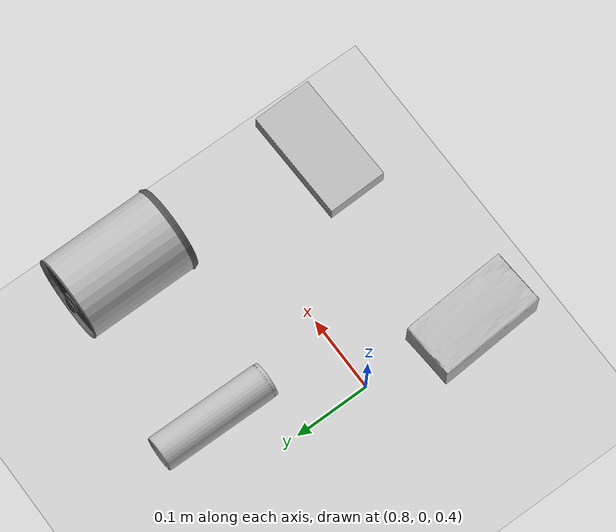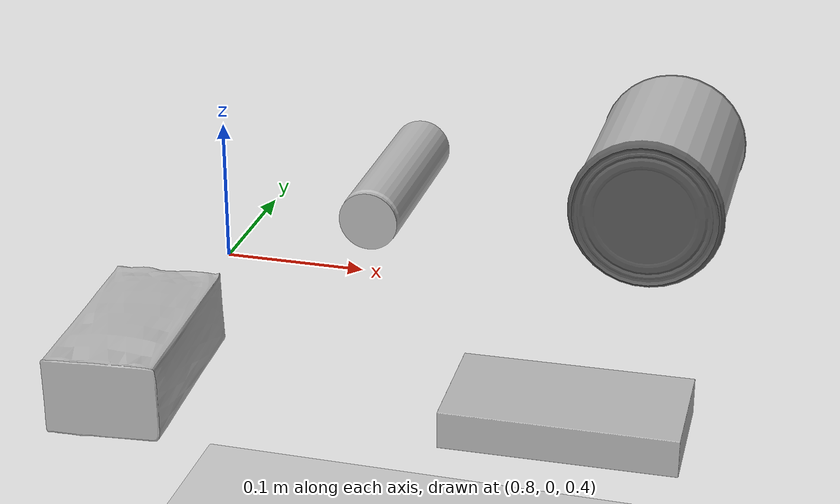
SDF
<sdf version="1.7">
 <world name="default">
  <light name="sun" type="directional">
   <pose>0 0 10 0 -0 0</pose>
   <diffuse>0.8 0.8 0.8 1</diffuse>
   <specular>0.2 0.2 0.2 1</specular>
   <attenuation>
    <range>1000</range>
    <constant>0.9</constant>
    <linear>0.01</linear>
    <quadratic>0.001</quadratic>
   </attenuation>
   <direction>-0.5 0.1 -0.9</direction>
   <spot><inner_angle>0</inner_angle><outer_angle>0</outer_angle><falloff>0</falloff></spot>
  </light>
  <model name="ground_plane">
   <static>1</static>
   <link name="link">
    <collision name="collision">
     <geometry><plane><normal>0 0 1</normal><size>100 100</size></plane></geometry>
     <surface><friction><ode><mu>100</mu><mu2>50</mu2></ode></friction></surface>
    </collision>
    <visual name="visual">
     <cast_shadows>0</cast_shadows>
     <geometry><plane><normal>0 0 1</normal><size>100 100</size></plane></geometry>
     <material>
      <script><uri>file://media/materials/scripts/gazebo.material</uri><name>Gazebo/Grey</name></script>
     </material>
    </visual>
   </link>
  </model>
  <gravity>0 0 -9.8</gravity>
  <magnetic_field>6e-06 2.3e-05 -4.2e-05</magnetic_field>
  <atmosphere type="adiabatic"/>
  <physics type="ode">
   <max_step_size>0.001</max_step_size>
   <real_time_factor>1</real_time_factor>
   <real_time_update_rate>1000</real_time_update_rate>
  </physics>
  <scene><ambient>0.4 0.4 0.4 1</ambient><background>0.7 0.7 0.7 1</background><shadows>1</shadows></scene>
  <spherical_coordinates>
   <surface_model>EARTH_WGS84</surface_model>
   <latitude_deg>0</latitude_deg>
   <longitude_deg>0</longitude_deg>
   <elevation>0</elevation>
   <heading_deg>0</heading_deg>
  </spherical_coordinates>
  <model name="oats_box">
   <link name="link">
    <inertial>
     <mass>0.001</mass>
     <inertia><ixx>1e-05</ixx><ixy>0</ixy><ixz>0</ixz><iyy>1e-05</iyy><iyz>0</iyz><izz>1e-05</izz></inertia>
    </inertial>
    <collision name="collision">
     <geometry><mesh><uri>/home/jan/ws_myrobot/src/myrobot/model/objects/oats/oats.dae</uri></mesh></geometry>
     <surface>
      <friction><ode><mu>1</mu><mu2>1</mu2></ode></friction>
      <contact><ode><kp>1e+07</kp><kd>1</kd><min_depth>0</min_depth><max_vel>0.01</max_vel></ode></contact>
     </surface>
    </collision>
    <visual name="visual">
     <geometry><mesh><uri>/home/jan/ws_myrobot/src/myrobot/model/objects/oats/oats.dae</uri></mesh></geometry>
     <material><lighting>1</lighting><shader type="pixel"/></material>
    </visual>
   </link>
   <static>0</static>
   <pose>0.792288 -0.151446 0.399799 -2.60401 1.54516 -0.968675</pose>
  </model>
  <model name="tea_box">
   <link name="link">
    <inertial>
     <mass>0.001</mass>
     <inertia><ixx>1e-05</ixx><ixy>0</ixy><ixz>0</ixz><iyy>1e-05</iyy><iyz>0</iyz><izz>1e-05</izz></inertia>
    </inertial>
    <collision name="collision">
     <geometry><mesh><uri>/home/jan/ws_myrobot/src/myrobot/model/objects/tea/tea.dae</uri></mesh></geometry>
     <surface>
      <friction><ode><mu>1</mu><mu2>1</mu2></ode></friction>
      <contact><ode><kp>1e+07</kp><kd>1</kd><min_depth>0</min_depth><max_vel>0.01</max_vel></ode></contact>
     </surface>
    </collision>
    <visual name="visual">
     <geometry><mesh><uri>/home/jan/ws_myrobot/src/myrobot/model/objects/tea/tea.dae</uri></mesh></geometry>
     <material><lighting>1</lighting><shader type="pixel"/></material>
    </visual>
   </link>
   <static>0</static>
   <pose>1.07487 -0.135776 0.385728 1.57063 -0.00031 1.59655</pose>
  </model>
  <model name="crisps_can">
   <link name="link">
    <inertial>
     <mass>0.001</mass>
     <inertia><ixx>1e-05</ixx><ixy>0</ixy><ixz>0</ixz><iyy>1e-05</iyy><iyz>0</iyz><izz>1e-05</izz></inertia>
    </inertial>
    <collision name="collision">
     <geometry><mesh><uri>/home/jan/ws_myrobot/src/myrobot/model/objects/crisps/crisps.dae</uri></mesh></geometry>
     <surface>
      <friction><ode><mu>1</mu><mu2>1</mu2></ode></friction>
      <contact><ode><kp>1e+07</kp><kd>1</kd><min_depth>0</min_depth><max_vel>0.01</max_vel></ode></contact>
     </surface>
    </collision>
    <visual name="visual">
     <geometry><mesh><uri>/home/jan/ws_myrobot/src/myrobot/model/objects/crisps/crisps.dae</uri></mesh></geometry>
     <material><lighting>1</lighting><shader type="pixel"/></material>
    </visual>
   </link>
   <static>0</static>
   <pose>0.87808 0.161671 0.396374 -0.000616 -0.098419 -0.004955</pose>
  </model>
  <model name="soup_can">
   <link name="link">
    <inertial>
     <mass>0.001</mass>
     <inertia><ixx>1e-05</ixx><ixy>0</ixy><ixz>0</ixz><iyy>1e-05</iyy><iyz>0</iyz><izz>1e-05</izz></inertia>
    </inertial>
    <collision name="collision">
     <geometry><mesh><uri>/home/jan/ws_myrobot/src/myrobot/model/objects/soup/soup.dae</uri></mesh></geometry>
     <surface>
      <friction><ode><mu>1</mu><mu2>1</mu2></ode></friction>
      <contact><ode><kp>1e+07</kp><kd>1</kd><min_depth>0</min_depth><max_vel>0.01</max_vel></ode></contact>
     </surface>
    </collision>
    <visual name="visual">
     <geometry><mesh><uri>/home/jan/ws_myrobot/src/myrobot/model/objects/soup/soup.dae</uri></mesh></geometry>
     <material><lighting>1</lighting><shader type="pixel"/></material>
    </visual>
   </link>
   <static>0</static>
   <pose>1.08726 0.146746 0.429295 3.134 -0.092368 0.006564</pose>
  </model>
 </world>
</sdf>
